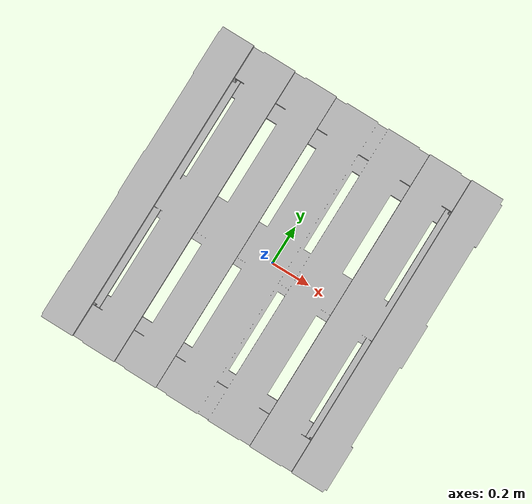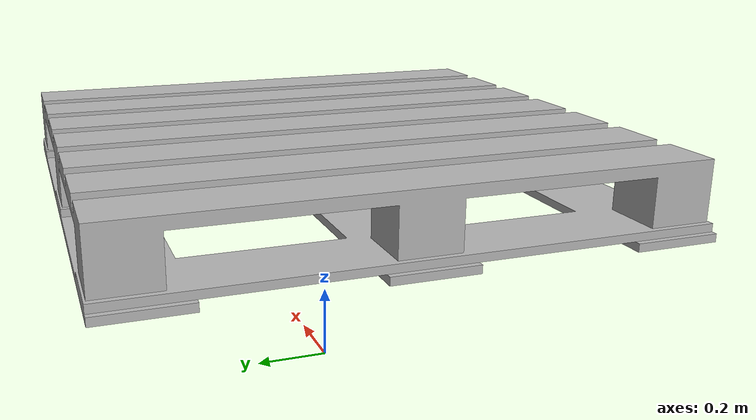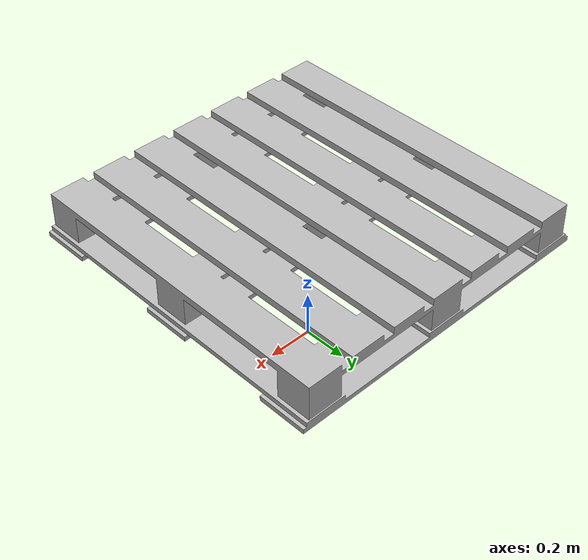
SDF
<?xml version="1.0" ?>
<sdf version="1.6">
  <model name="wooden_pallet">
    <static>false</static>
    <pose>0 0 0.5 0 0 0</pose>
    <link name="link">

      <inertial>
        <mass>1.0</mass>
        <inertia>
          <ixx>0.01</ixx><ixy>0</ixy><ixz>0</ixz>
          <iyy>0.01</iyy><iyz>0</iyz>
          <izz>0.01</izz>
        </inertia>
      </inertial>

      <collision name="collision">
        <geometry>
          <box>
            <size>1.2 0.8 0.15</size>
          </box>
        </geometry>
        <surface>
          <contact>
            <ode>
              <max_vel>0.1</max_vel>
              <min_depth>0.001</min_depth>
            </ode>
          </contact>
        </surface>
      </collision>

      <visual name="visual">
        <geometry>
          <mesh><uri>model://wooden_pallet/meshes/model.dae</uri></mesh>
        </geometry>
      </visual>
    </link>
  </model>
</sdf>
